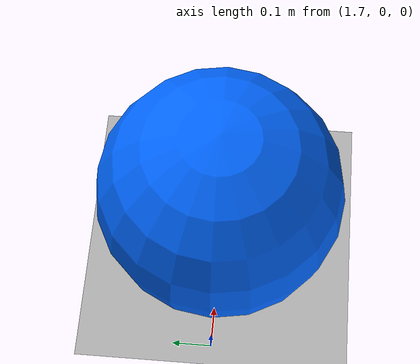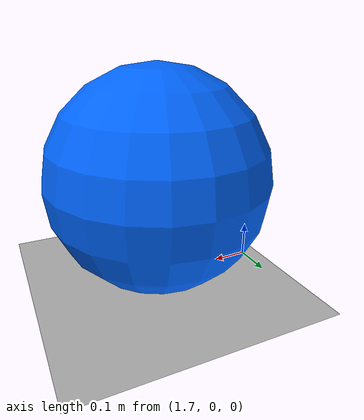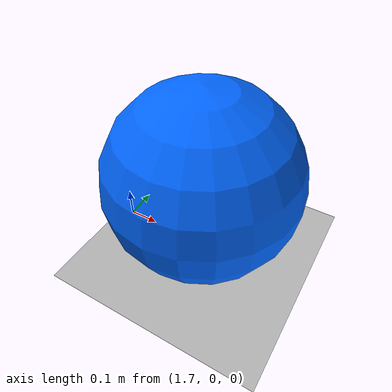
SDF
<?xml version="1.0" ?>
<sdf version="1.8">
  <world name="esfera_circular">

    <physics name="1ms" type="ignored">
      <max_step_size>0.001</max_step_size>
      <real_time_factor>1.0</real_time_factor>
    </physics>

    <plugin filename="gz-sim-physics-system"
            name="gz::sim::systems::Physics"/>
    <plugin filename="gz-sim-user-commands-system"
            name="gz::sim::systems::UserCommands"/>
    <plugin filename="gz-sim-scene-broadcaster-system"
            name="gz::sim::systems::SceneBroadcaster"/>

    <light name="sol" type="directional">
      <cast_shadows>true</cast_shadows>
      <pose>0 0 10 0 0 0</pose>
      <diffuse>0.8 0.8 0.8 1</diffuse>
      <specular>0.2 0.2 0.2 1</specular>
      <attenuation>
        <range>1000</range>
        <constant>0.9</constant>
        <linear>0.01</linear>
        <quadratic>0.001</quadratic>
      </attenuation>
      <direction>-0.5 0.1 -0.9</direction>
    </light>

    <!-- Plano horizontal que actúa como suelo -->
    <model name="plano_suelo">
      <static>true</static>
      <link name="link">
        <collision name="colision">
          <geometry>
            <plane>
              <normal>0 0 1</normal>
              <size>20 20</size>
            </plane>
          </geometry>
        </collision>
        <visual name="visual">
          <geometry>
            <plane>
              <normal>0 0 1</normal>
              <size>20 20</size>
            </plane>
          </geometry>
          <material>
            <ambient>0.7 0.7 0.7 1</ambient>
            <diffuse>0.7 0.7 0.7 1</diffuse>
            <specular>0.1 0.1 0.1 1</specular>
          </material>
        </visual>
      </link>
    </model>

    <model name="esfera_circular">
      <pose>2.0 0.0 0.3 0 0 0</pose>
      <link name="link_esfera">
        <inertial>
          <mass>1.0</mass>
          <inertia>
            <ixx>0.096</ixx>
            <iyy>0.096</iyy>
            <izz>0.096</izz>
          </inertia>
        </inertial>
        <collision name="colision">
          <geometry>
            <sphere>
              <radius>0.3</radius>
            </sphere>
          </geometry>
        </collision>
        <visual name="visual">
          <geometry>
            <sphere>
              <radius>0.3</radius>
            </sphere>
          </geometry>
          <material>
            <ambient>0.0 0.2 0.8 1</ambient>
            <diffuse>0.0 0.4 1.0 1</diffuse>
            <specular>0.4 0.4 0.4 1</specular>
          </material>
        </visual>
      </link>

      <plugin filename="gz-sim-velocity-control-system"
              name="gz::sim::systems::VelocityControl"/>
    </model>

  </world>
</sdf>
